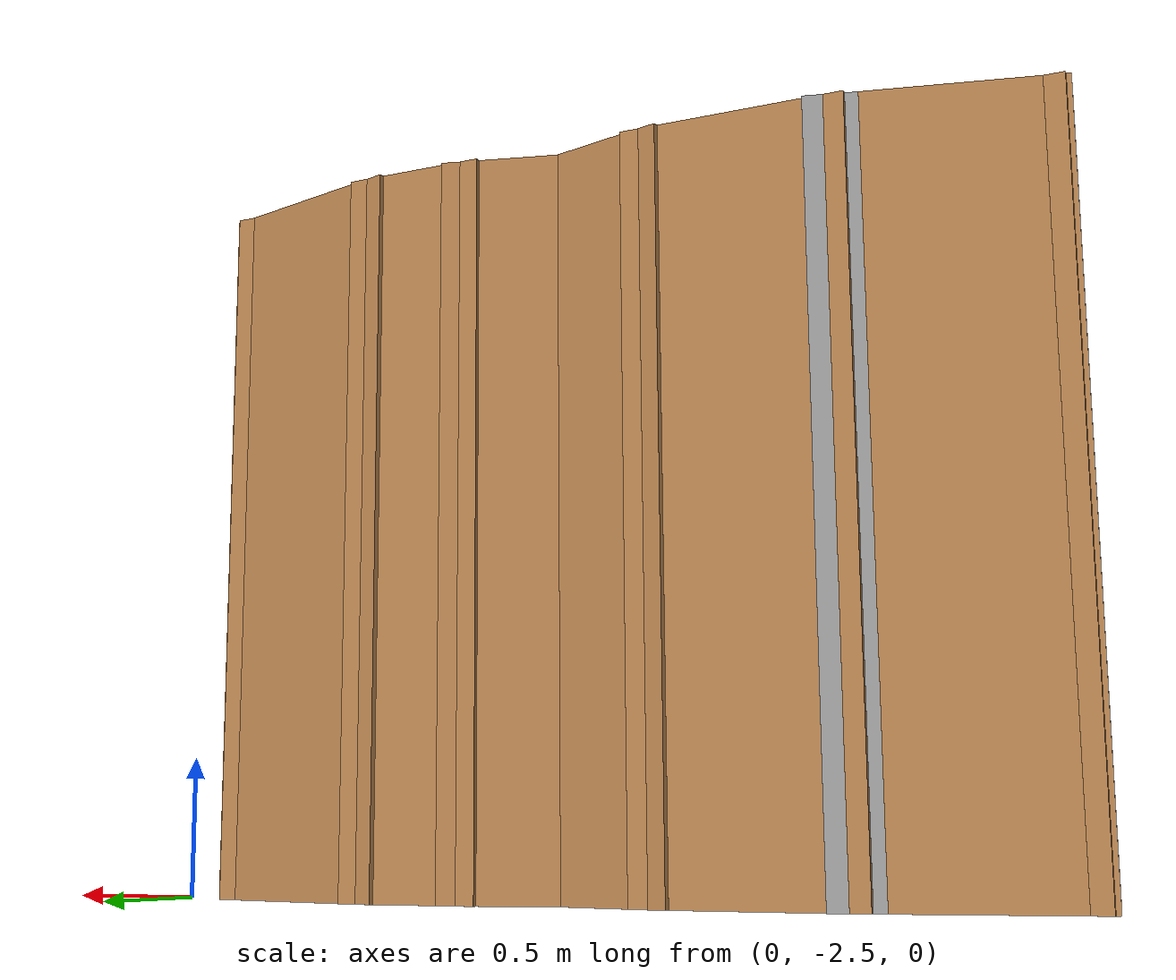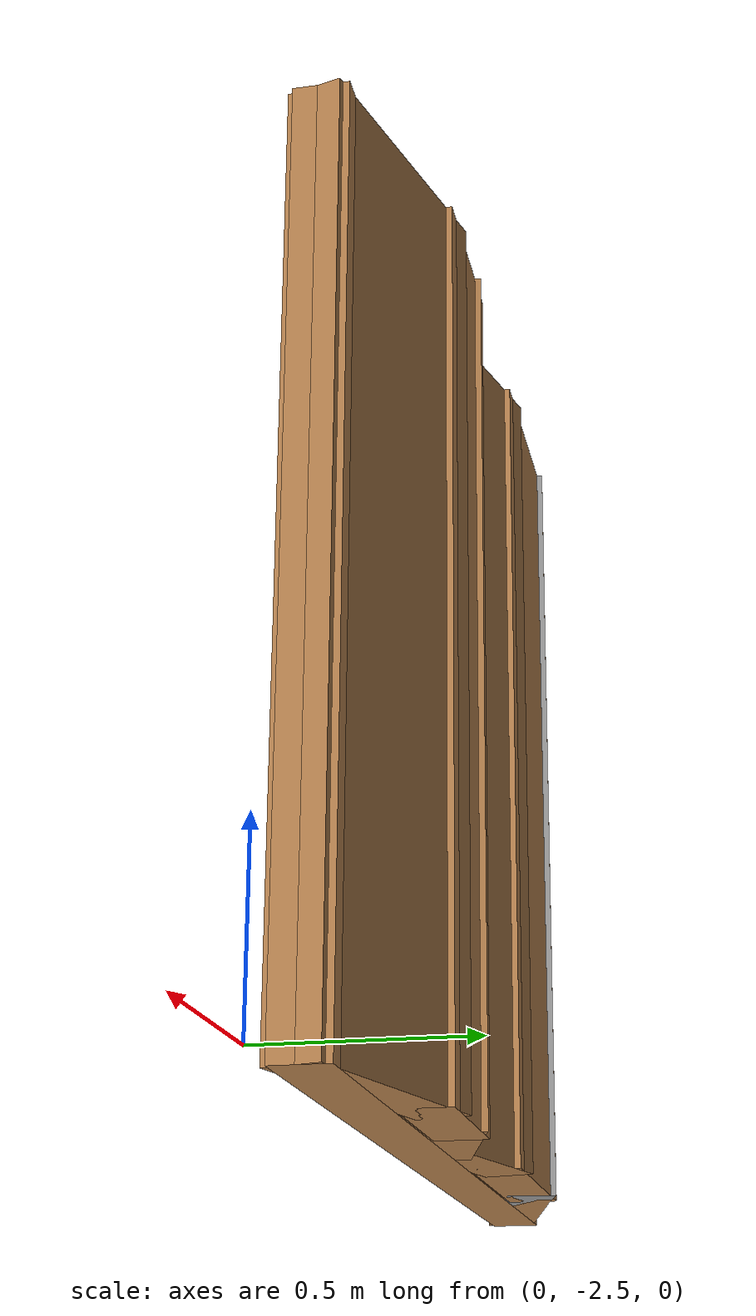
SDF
<?xml version='1.0'?>
<sdf version='1.7'>
  <model name='Untitled'>
    <pose>-1.61512 -1.26593 0 0 -0 0</pose>
    <link name='Wall_0'>
      <collision name='Wall_0_Collision'>
        <geometry>
          <box>
            <size>3 0.15 2.5</size>
          </box>
        </geometry>
        <pose>0 0 1.25 0 -0 0</pose>
      </collision>
      <visual name='Wall_0_Visual'>
        <pose>0 0 1.25 0 -0 0</pose>
        <geometry>
          <box>
            <size>3 0.15 2.5</size>
          </box>
        </geometry>
        <material>
          <script>
            <uri>file://media/materials/scripts/gazebo.material</uri>
            <name>Gazebo/Wood</name>
          </script>
          <ambient>1 1 1 1</ambient>
        </material>
        <meta>
          <layer>0</layer>
        </meta>
      </visual>
      <pose>-0.099882 -1.17407 0 0 -0 0</pose>
    </link>
    <link name='Wall_1'>
      <collision name='Wall_1_Collision'>
        <geometry>
          <box>
            <size>0.75 0.15 2.5</size>
          </box>
        </geometry>
        <pose>0 0 1.25 0 -0 0</pose>
      </collision>
      <visual name='Wall_1_Visual'>
        <pose>0 0 1.25 0 -0 0</pose>
        <geometry>
          <box>
            <size>0.75 0.15 2.5</size>
          </box>
        </geometry>
        <material>
          <script>
            <uri>file://media/materials/scripts/gazebo.material</uri>
            <name>Gazebo/Wood</name>
          </script>
          <ambient>1 1 1 1</ambient>
        </material>
        <meta>
          <layer>0</layer>
        </meta>
      </visual>
      <pose>1.03534 -1.09643 0 0 -0 2.87979</pose>
    </link>
    <link name='Wall_2'>
      <collision name='Wall_2_Collision'>
        <geometry>
          <box>
            <size>0.5 0.15 2.5</size>
          </box>
        </geometry>
        <pose>0 0 1.25 0 -0 0</pose>
      </collision>
      <visual name='Wall_2_Visual'>
        <pose>0 0 1.25 0 -0 0</pose>
        <geometry>
          <box>
            <size>0.5 0.15 2.5</size>
          </box>
        </geometry>
        <material>
          <script>
            <uri>file://media/materials/scripts/gazebo.material</uri>
            <name>Gazebo/Wood</name>
          </script>
          <ambient>1 1 1 1</ambient>
        </material>
        <meta>
          <layer>0</layer>
        </meta>
      </visual>
      <pose>0.570562 -1.01878 0 0 -0 3.14159</pose>
    </link>
    <link name='Wall_3'>
      <collision name='Wall_3_Collision'>
        <geometry>
          <box>
            <size>0.5 0.15 2.5</size>
          </box>
        </geometry>
        <pose>0 0 1.25 0 -0 0</pose>
      </collision>
      <visual name='Wall_3_Visual'>
        <pose>0 0 1.25 0 -0 0</pose>
        <geometry>
          <box>
            <size>0.5 0.15 2.5</size>
          </box>
        </geometry>
        <material>
          <script>
            <uri>file://media/materials/scripts/gazebo.material</uri>
            <name>Gazebo/Wood</name>
          </script>
          <ambient>1 1 1 1</ambient>
        </material>
        <meta>
          <layer>0</layer>
        </meta>
      </visual>
      <pose>0.226526 -1.06407 0 0 -0 -2.87979</pose>
    </link>
    <link name='Wall_4'>
      <collision name='Wall_4_Collision'>
        <geometry>
          <box>
            <size>0.5 0.15 2.5</size>
          </box>
        </geometry>
        <pose>0 0 1.25 0 -0 0</pose>
      </collision>
      <visual name='Wall_4_Visual'>
        <pose>0 0 1.25 0 -0 0</pose>
        <geometry>
          <box>
            <size>0.5 0.15 2.5</size>
          </box>
        </geometry>
        <material>
          <script>
            <uri>file://media/materials/scripts/gazebo.material</uri>
            <name>Gazebo/Wood</name>
          </script>
          <ambient>1 1 1 1</ambient>
        </material>
        <meta>
          <layer>0</layer>
        </meta>
      </visual>
      <pose>-0.111549 -1.06407 0 0 -0 2.87979</pose>
    </link>
    <link name='Wall_5'>
      <collision name='Wall_5_Collision'>
        <geometry>
          <box>
            <size>0.75 0.15 2.5</size>
          </box>
        </geometry>
        <pose>0 0 1.25 0 -0 0</pose>
      </collision>
      <visual name='Wall_5_Visual'>
        <pose>0 0 1.25 0 -0 0</pose>
        <geometry>
          <box>
            <size>0.75 0.15 2.5</size>
          </box>
        </geometry>
        <material>
          <script>
            <uri>file://media/materials/scripts/gazebo.material</uri>
            <name>Gazebo/Wood</name>
          </script>
          <ambient>1 1 1 1</ambient>
        </material>
        <meta>
          <layer>0</layer>
        </meta>
      </visual>
      <pose>-0.580585 -1.01878 0 0 -0 3.14159</pose>
    </link>
    <link name='Wall_6'>
      <collision name='Wall_6_Collision'>
        <geometry>
          <box>
            <size>0.25 0.15 2.5</size>
          </box>
        </geometry>
        <pose>0 0 1.25 0 -0 0</pose>
      </collision>
      <visual name='Wall_6_Visual'>
        <pose>0 0 1.25 0 -0 0</pose>
        <geometry>
          <box>
            <size>0.25 0.15 2.5</size>
          </box>
        </geometry>
        <material>
          <script>
            <uri>file://media/materials/scripts/gazebo.material</uri>
            <name>Gazebo/Grey</name>
          </script>
          <ambient>1 1 1 1</ambient>
        </material>
        <meta>
          <layer>0</layer>
        </meta>
      </visual>
      <pose>-0.928882 -1.03172 0 0 -0 -2.87979</pose>
    </link>
    <link name='Wall_7'>
      <collision name='Wall_7_Collision'>
        <geometry>
          <box>
            <size>0.712784 0.15 2.5</size>
          </box>
        </geometry>
        <pose>0 0 1.25 0 -0 0</pose>
      </collision>
      <visual name='Wall_7_Visual'>
        <pose>0 0 1.25 0 -0 0</pose>
        <geometry>
          <box>
            <size>0.712784 0.15 2.5</size>
          </box>
        </geometry>
        <material>
          <script>
            <uri>file://media/materials/scripts/gazebo.material</uri>
            <name>Gazebo/Wood</name>
          </script>
          <ambient>1 1 1 1</ambient>
        </material>
        <meta>
          <layer>0</layer>
        </meta>
      </visual>
      <pose>-1.25103 -1.10937 0 0 -0 -2.90957</pose>
    </link>
    <static>1</static>
  </model>
</sdf>
